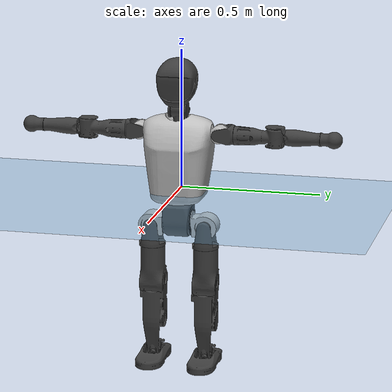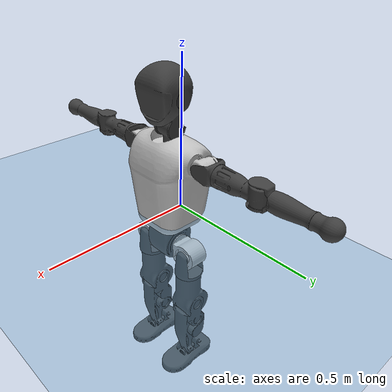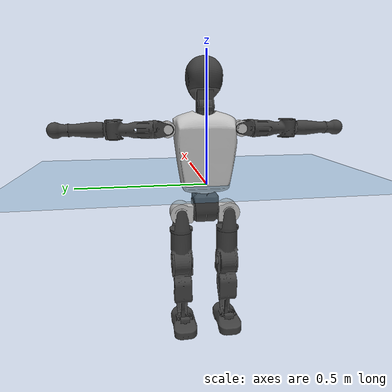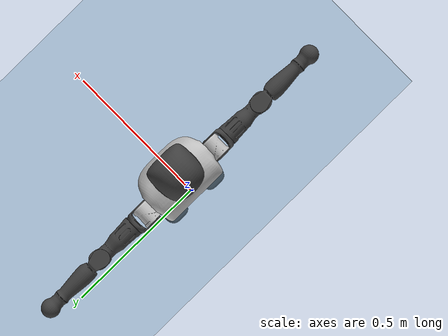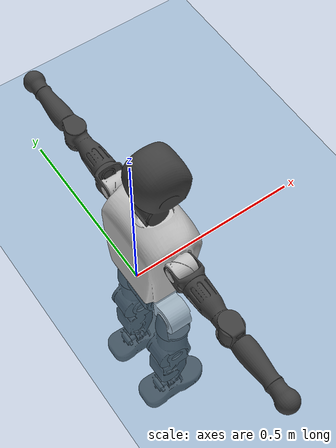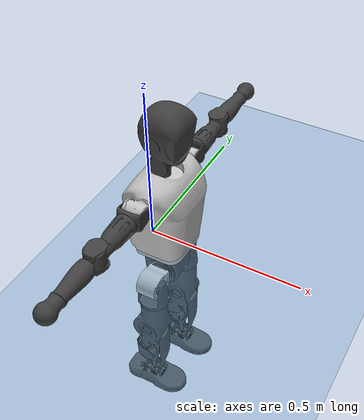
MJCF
<mujoco model="T1">
  <compiler angle="radian" assetdir="assets" balanceinertia="true" inertiafromgeom="false"/>

  <option timestep="0.005" density="1.2" viscosity="2e-05"/>

  <size nkey="1"/>

  <visual>
    <quality shadowsize="8192"/>
    <map shadowclip="0.5"/>
  </visual>

  <default>
    <default class="/">
      <joint armature="0.01" damping="0.01" frictionloss="0.1"/>
      <geom contype="0" conaffinity="0" group="1" solref="-1000 -80"/>
      <site size="0.01 0.005 0.005" group="5"/>
      <general forcelimited="true" biastype="affine" gainprm="25" biasprm="0 -25 -0.6"/>
      <default class="t1">
        <geom rgba="0.25 0.25 0.25 1"/>
        <default class="visual">
          <geom type="mesh" group="2"/>
        </default>
        <default class="collision">
          <geom group="3"/>
        </default>
        <default class="foot">
          <geom size="0.1115 0.05 0.015" type="box" condim="6" group="4" priority="1" solimp="0.015 1 0.015"/>
        </default>
        <default class="reward_collision_sphere">
          <geom group="5" rgba="1 0 0 1"/>
        </default>
      </default>
    </default>
  </default>

  <asset>
    <texture type="skybox" colorspace="auto" name="//unnamed_texture_0" builtin="gradient" rgb1="0.95 0.95 0.95" rgb2="0.95 0.95 0.95" width="100" height="600"/>
    <texture type="2d" colorspace="auto" name="texplane" builtin="checker" rgb1="0.345 0.575 0.748" rgb2="0.345 0.575 0.748" markrgb="1 1 1" width="512" height="512"/>
    <material name="MatPlane" class="/" texture="texplane" texuniform="true" texrepeat="2 2" specular="0.9"/>
    <mesh name="Trunk" class="/" file="Trunk.stl"/>
    <mesh name="H1" class="/" file="H1.stl"/>
    <mesh name="H2" class="/" file="H2.stl"/>
    <mesh name="AL1" class="/" file="AL1.stl"/>
    <mesh name="AL2" class="/" file="AL2.stl"/>
    <mesh name="AL3" class="/" file="AL3.stl"/>
    <mesh name="left_hand_link" class="/" file="left_hand_link.stl"/>
    <mesh name="AR1" class="/" file="AR1.stl"/>
    <mesh name="AR2" class="/" file="AR2.stl"/>
    <mesh name="AR3" class="/" file="AR3.stl"/>
    <mesh name="right_hand_link" class="/" file="right_hand_link.stl"/>
    <mesh name="Waist" class="/" file="Waist.stl"/>
    <mesh name="Hip_Pitch_Left" class="/" file="Hip_Pitch_Left.stl"/>
    <mesh name="Hip_Roll_Left" class="/" file="Hip_Roll_Left.stl"/>
    <mesh name="Hip_Yaw_Left" class="/" file="Hip_Yaw_Left.stl"/>
    <mesh name="Shank_Left" class="/" file="Shank_Left.stl"/>
    <mesh name="Ankle_Cross_Left" class="/" file="Ankle_Cross_Left.stl"/>
    <mesh name="left_foot_link" class="/" file="left_foot_link.stl"/>
    <mesh name="Hip_Pitch_Right" class="/" file="Hip_Pitch_Right.stl"/>
    <mesh name="Hip_Roll_Right" class="/" file="Hip_Roll_Right.stl"/>
    <mesh name="Hip_Yaw_Right" class="/" file="Hip_Yaw_Right.stl"/>
    <mesh name="Shank_Right" class="/" file="Shank_Right.stl"/>
    <mesh name="Ankle_Cross_Right" class="/" file="Ankle_Cross_Right.stl"/>
    <mesh name="right_foot_link" class="/" file="right_foot_link.stl"/>
  </asset>

  <worldbody>
    <geom name="floor" class="/" size="100 100 0.125" type="plane" group="0" material="MatPlane"/>
    <light name="toplight_shadow" class="/" pos="0 0 5" dir="0.0990148 0.0990148 -0.990148" type="directional" ambient="0.04 0.04 0.04" diffuse="0.55 0.55 0.55" specular="0.12 0.12 0.12"/>
    <light name="toplight_fill" class="/" pos="0 0 5" dir="0.0990148 0.0990148 -0.990148" type="directional" castshadow="false" ambient="0.04 0.04 0.04" diffuse="0.3 0.3 0.3" specular="0.08 0.08 0.08"/>
    <body name="trunk" childclass="t1" pos="0.000347428 0.000777354 0.00186761" quat="1 -9.9642e-05 8.14597e-05 -1.14943e-05">
      <inertial pos="0.0412143 -0.00274572 0.10118" quat="0.999945 0.000178904 -0.0104001 -0.000902209" mass="8.16683" diaginertia="0.0276232 0.0521232 0.0454444"/>
      <joint name="//unnamed_joint_0" type="free" armature="0" damping="0" frictionloss="0"/>
      <geom name="//unnamed_geom_1" class="visual" rgba="0.76 0.76 0.76 1" mesh="Trunk"/>
      <geom name="//unnamed_geom_2" class="collision" size="0.0668063 0.0890751 0.133613" pos="0.0470311 0 0.115695" type="box"/>
      <geom name="//unnamed_geom_3" class="reward_collision_sphere" size="0.102436" pos="0.0470311 0 0.0964123"/>
      <geom name="//unnamed_geom_4" class="reward_collision_sphere" size="0.0133613" pos="0.0470311 0.0785636 0"/>
      <geom name="//unnamed_geom_5" class="reward_collision_sphere" size="0.0133613" pos="0.0470311 -0.0785636 0"/>
      <geom name="//unnamed_geom_6" class="reward_collision_sphere" size="0.0133613" pos="0.0470311 0.0988977 0.173542"/>
      <geom name="//unnamed_geom_7" class="reward_collision_sphere" size="0.0133613" pos="0.0470311 -0.0988977 0.173542"/>
      <site name="imu" pos="-0.0136407 0.0135214 -0.0136774" size="0.00890751"/>
      <camera name="track" pos="0 -1.84856 0" quat="0.707107 0.707107 0 0" mode="trackcom"/>
      <camera name="ego_camera" pos="0.09563 0 0.404932" quat="-0.5 -0.5 0.5 0.5"/>
      <body name="H1" pos="0.0483152 0.000793871 0.234412" quat="0.999999 -0.00107143 -4.27611e-05 0.000926859">
        <inertial pos="-0.000977722 -0.00149589 0.0548681" quat="0.76417 -0.0100821 0.00493719 0.644917" mass="0.334838" diaginertia="7.16768e-05 0.000154378 0.000129604"/>
        <joint name="AAHead_yaw" pos="0 0 0" axis="-0.00514572 -0.00396262 0.999979" range="-1.59116 1.55861" armature="0.0102555" damping="0" frictionloss="0.0897705"/>
        <geom name="//unnamed_geom_8" class="visual" mesh="H1"/>
        <body name="H2" pos="0.002084 -0.00177792 0.0593649" quat="1 0.000200802 -0.000178571 0.000266035">
          <inertial pos="0.00478852 0.000404512 0.0948264" quat="0.988164 0.106316 -0.0729625 -0.0830998" mass="0.449908" diaginertia="0.000604491 0.00128666 0.00145145"/>
          <joint name="Head_pitch" pos="0 0 0" axis="0.0087416 -0.999942 0.00636736" stiffness="0.00443924" range="-1.20057 0.322407" armature="0.00886563" damping="0" frictionloss="0.0919795"/>
          <geom name="//unnamed_geom_9" class="visual" mesh="H2"/>
          <geom name="//unnamed_geom_10" class="collision" size="0.0712601" pos="0.00783852 0 0.106054"/>
          <geom name="//unnamed_geom_11" class="reward_collision_sphere" size="0.0801676" pos="0.015677 0 0.0964123"/>
        </body>
      </body>
      <body name="AL1" pos="0.0445786 0.099249 0.210711" quat="0.999999 -0.000781845 0.0013214 0.000383835">
        <inertial pos="-0.000180599 0.0439165 0.000146378" quat="0.508128 0.493698 -0.502518 0.495524" mass="0.375539" diaginertia="0.000412441 0.000875912 0.000244435"/>
        <joint name="Left_Shoulder_Pitch" pos="0 0 0" axis="0.00223883 0.999997 -0.000321221" range="-3.30361 1.22595" armature="0.00921982" damping="0.0108084" frictionloss="0.0817758"/>
        <geom name="//unnamed_geom_12" class="visual" rgba="0.76 0.76 0.76 1" mesh="AL1"/>
        <body name="AL2" pos="-0.000511773 0.0445978 9.80089e-05" quat="1 1.15168e-06 -2.49859e-06 3.91851e-07">
          <inertial pos="0.00231093 0.0360299 0.0024001" quat="0.488826 0.512899 -0.486839 0.510854" mass="0.119643" diaginertia="0.000121901 0.000230401 0.00015235"/>
          <joint name="Left_Shoulder_Roll" pos="0 0 0" axis="-0.999991 -0.00316676 0.00264061" stiffness="0.0036501" range="-1.51669 1.79525" armature="0.00781028" damping="0" frictionloss="0.0900369"/>
          <geom name="//unnamed_geom_13" class="visual" mesh="AL2"/>
          <body name="AL3" pos="0.00299769 0.0568566 -0.00165256" quat="1 -0.000351853 -0.000387633 0.000171291">
            <inertial pos="0.00154608 0.0788603 -0.000247852" quat="0.703926 0.710273 -0.000572992 0.000243498" mass="0.732881" diaginertia="0.00373386 0.00887776 0.000503387"/>
            <joint name="Left_Elbow_Pitch" pos="0 0 0" axis="-0.00900322 -0.999916 0.00937228" range="-2.21848 2.31882" armature="0.00777282" damping="0.00635026" frictionloss="0.0797375"/>
            <geom name="//unnamed_geom_14" class="visual" mesh="AL3"/>
            <geom name="//unnamed_geom_15" class="collision" size="0.0267225 0.0668063" pos="0 0.0462139 0" quat="0.707105 0.707108 0 0" type="cylinder"/>
            <geom name="//unnamed_geom_16" class="reward_collision_sphere" size="0.032067"/>
            <body name="left_hand_link" pos="-0.00155668 0.138572 0.0027139" quat="1 -0.000159074 1.58775e-05 0.000109265">
              <inertial pos="-0.000417738 0.100355 0.00127876" quat="0.707683 0.70653 0.000124241 -0.000669814" mass="0.230393" diaginertia="0.00248433 0.00562006 0.000178649"/>
              <joint name="Left_Elbow_Yaw" pos="0 0 0" axis="0.00202866 -0.00303691 0.999993" range="-2.45318 0.00538945" armature="0.0102435" damping="0.0130248" frictionloss="0.0831899"/>
              <geom name="//unnamed_geom_17" class="visual" mesh="left_hand_link"/>
              <geom name="//unnamed_geom_18" class="collision" size="0.0267225 0.0779407" pos="0 0.120156 0" quat="0.707105 0.707108 0 0" type="cylinder"/>
              <geom name="//unnamed_geom_19" class="reward_collision_sphere" size="0.0445375"/>
              <geom name="//unnamed_geom_20" class="reward_collision_sphere" size="0.0311763" pos="0 0.101671 0"/>
              <geom name="//unnamed_geom_21" class="reward_collision_sphere" size="0.0311763" pos="0 0.19872 0"/>
            </body>
          </body>
        </body>
      </body>
      <body name="AR1" pos="0.0421605 -0.095478 0.211671" quat="1 9.66534e-05 8.86703e-05 0.000106673">
        <inertial pos="-0.00357886 -0.0421953 0.00196806" quat="0.512797 0.486779 -0.507148 0.492835" mass="0.381106" diaginertia="0.000403328 0.000869036 0.000253747"/>
        <joint name="Right_Shoulder_Pitch" pos="0 0 0" axis="-0.002113 -0.999998 -0.00030274" stiffness="0.00586631" range="-1.22707 3.30451" armature="0.00910354" damping="0.00943565" frictionloss="0.0798721"/>
        <geom name="//unnamed_geom_22" class="visual" rgba="0.76 0.76 0.76 1" mesh="AR1"/>
        <body name="AR2" pos="0.000381032 -0.0416847 0.000217818" quat="1 -0.000257133 0.00040922 7.42602e-06">
          <inertial pos="0.00238797 -0.0358408 0.0015223" quat="0.511183 0.488039 -0.51153 0.488719" mass="0.112986" diaginertia="0.000118582 0.000240692 0.000149252"/>
          <joint name="Right_Shoulder_Roll" pos="0 0 0" axis="-0.999921 -0.0107962 0.00637835" range="-1.71804 1.62544" armature="0.00798322" damping="0.0152937" frictionloss="0.0849255"/>
          <geom name="//unnamed_geom_23" class="visual" mesh="AR2"/>
          <body name="AR3" pos="0.000244009 -0.0549583 -0.00223489" quat="1 -0.0001273 3.27436e-07 -0.000101494">
            <inertial pos="-9.19963e-05 -0.0817175 0.00257832" quat="0.702201 0.711939 -0.00751195 0.0007693" mass="0.709701" diaginertia="0.00383173 0.00837288 0.000531235"/>
            <joint name="Right_Elbow_Pitch" pos="0 0 0" axis="0.00234235 0.999995 -0.0021515" range="-2.24121 2.22547" armature="0.00907605" damping="0.0201353" frictionloss="0.0891113"/>
            <geom name="//unnamed_geom_24" class="visual" mesh="AR3"/>
            <geom name="//unnamed_geom_25" class="collision" size="0.0267225 0.0668063" pos="0 -0.0462139 0" quat="0.707105 0.707108 0 0" type="cylinder"/>
            <geom name="//unnamed_geom_26" class="reward_collision_sphere" size="0.032067"/>
            <body name="right_hand_link" pos="0.000471075 -0.135738 0.000123848" quat="1 0.000153307 0.00024545 -9.35282e-05">
              <inertial pos="-0.0004941 -0.100095 -0.00145524" quat="0.706345 0.707867 -0.000484126 0.00127979" mass="0.231346" diaginertia="0.00237358 0.00545402 0.000173716"/>
              <joint name="Right_Elbow_Yaw" pos="0 0 0" axis="0.000500345 -0.00118588 0.999999" stiffness="0.00127423" range="-0.0175409 2.44768" armature="0.0085199" damping="0.00448202" frictionloss="0.0974928"/>
              <geom name="//unnamed_geom_27" class="visual" mesh="right_hand_link"/>
              <geom name="//unnamed_geom_28" class="collision" size="0.0267225 0.0779407" pos="0 -0.120156 0" quat="0.707105 0.707108 0 0" type="cylinder"/>
              <geom name="//unnamed_geom_29" class="reward_collision_sphere" size="0.0445375"/>
              <geom name="//unnamed_geom_30" class="reward_collision_sphere" size="0.0311763" pos="0 -0.101671 0"/>
              <geom name="//unnamed_geom_31" class="reward_collision_sphere" size="0.0311763" pos="0 -0.19872 0"/>
            </body>
          </body>
        </body>
      </body>
      <body name="Waist" pos="0.0511296 -0.00133549 -0.110777" quat="1 -1.45138e-05 -7.76048e-06 -9.90187e-05">
        <inertial pos="-0.00105643 0.00121106 0.00709758" quat="0.983587 0.00218034 -0.180397 0.00305754" mass="1.85255" diaginertia="0.00154459 0.00363871 0.0040099"/>
        <joint name="Waist" pos="0 0 0" axis="0.00318563 0.0114355 0.99993" stiffness="0.00442194" range="-1.58233 1.58071" armature="0.00861655" damping="0.026128" frictionloss="0.0877687"/>
        <geom name="//unnamed_geom_32" class="visual" mesh="Waist"/>
        <body name="Hip_Pitch_Left" pos="-0.00176417 0.0996213 0.00168333" quat="0.999999 8.83453e-05 -0.000955635 0.00111058">
          <inertial pos="-0.00162474 -0.00432818 -0.0180643" quat="0.975423 0.219776 0.0157526 -5.68099e-05" mass="0.702475" diaginertia="0.000515424 0.000962883 0.00104313"/>
          <joint name="Left_Hip_Pitch" pos="0 0 0" axis="-9.18202e-05 1 -3.30799e-06" range="-1.78074 1.5823" armature="0.00775841" damping="0.0118437" frictionloss="0.101074"/>
          <geom name="//unnamed_geom_33" class="visual" rgba="0.76 0.76 0.76 1" mesh="Hip_Pitch_Left"/>
          <body name="Hip_Roll_Left" pos="0.00337495 -0.000903858 -0.0221703" quat="1 0.000631735 0.000214033 0.000565653">
            <inertial pos="0.00272275 -0.000577045 -0.054451" quat="0.707195 -0.00443602 -0.00707676 0.706969" mass="0.263423" diaginertia="0.000516884 0.00101198 0.000421884"/>
            <joint name="Left_Hip_Roll" pos="0 0 0" axis="-0.999996 -0.000951296 0.00282731" range="-1.56582 0.213218" armature="0.00972047" damping="0.021262" frictionloss="0.0887672"/>
            <geom name="//unnamed_geom_34" class="visual" mesh="Hip_Roll_Left"/>
            <geom name="//unnamed_geom_35" class="reward_collision_sphere" size="0.0489913"/>
            <body name="Hip_Yaw_Left" pos="0.000167821 0.000508059 -0.0782369" quat="1 -3.15364e-06 -4.29045e-06 -6.96833e-06">
              <inertial pos="-0.00471876 0.00199899 -0.0833651" quat="0.6978 -0.0377464 -0.0315648 0.714601" mass="1.55526" diaginertia="0.00775569 0.0173819 0.00217457"/>
              <joint name="Left_Hip_Yaw" pos="0 0 0" axis="0.000526319 0.00555273 -0.999984" range="-1.00896 0.996021" armature="0.00887194" damping="0.0060755" frictionloss="0.0971649"/>
              <geom name="//unnamed_geom_36" class="visual" mesh="Hip_Yaw_Left"/>
              <geom name="//unnamed_geom_37" class="collision" size="0.0445375 0.0712601" type="cylinder"/>
              <body name="Shank_Left" pos="-0.00873378 -0.00167121 -0.131149" quat="0.999999 -0.000471412 -0.000496681 0.00101855">
                <inertial pos="-0.00468362 -0.000908402 -0.119895" quat="0.997849 0.0133567 -0.0187149 0.0613935" mass="1.25531" diaginertia="0.0104337 0.0239285 0.00156838"/>
                <joint name="Left_Knee_Pitch" pos="0 0 0" axis="-0.00629747 0.999962 -0.00602437" range="-0.0117796 2.28769" armature="0.00999398" damping="0.000939723" frictionloss="0.0891664"/>
                <geom name="//unnamed_geom_38" class="visual" mesh="Shank_Left"/>
                <geom name="//unnamed_geom_39" class="collision" size="0.0445375 0.0668063" pos="0 0 -0.115695" type="cylinder"/>
                <geom name="//unnamed_geom_40" class="reward_collision_sphere" size="0.0578988"/>
                <body name="Ankle_Cross_Left" pos="0.000995029 -0.00262028 -0.269058" quat="1 -4.36329e-05 0.000295009 -0.000125344">
                  <inertial pos="-0.00223488 0.000388157 -0.00833955" quat="0.447778 0.554826 0.541487 0.445484" mass="0.0500069" diaginertia="8.73171e-06 1.71233e-05 9.31323e-06"/>
                  <joint name="Left_Ankle_Pitch" pos="0 0 0" axis="2.10402e-05 1 -5.19296e-05" stiffness="0.0073143" range="-0.923051 0.40401" armature="0.00960021" damping="0" frictionloss="0.0956086"/>
                  <geom name="//unnamed_geom_41" class="visual" mesh="Ankle_Cross_Left"/>
                  <body name="left_foot_link" pos="-0.00202849 -0.000715109 -0.0144548" quat="0.999999 0.00102212 -0.000916046 0.000189719">
                    <inertial pos="0.000768105 -0.00101828 -0.00894022" quat="-0.00509886 0.614073 -0.00698288 0.789202" mass="0.497694" diaginertia="0.000818036 0.00166819 0.0019367"/>
                    <joint name="Left_Ankle_Roll" pos="0 0 0" axis="-0.999951 -0.00514588 0.00842391" stiffness="0.0081486" range="-0.432886 0.493797" armature="0.00909437" damping="0.0106854" frictionloss="0.099782"/>
                    <geom name="//unnamed_geom_42" class="visual" mesh="left_foot_link"/>
                    <geom name="left_foot" class="foot" size="0.103735 0.0409301 0.0145683" pos="0.00783852 0 -0.0144618"/>
                    <geom name="//unnamed_geom_44" class="reward_collision_sphere" size="0.046319" pos="0.00783852 0 -0.0144618"/>
                    <geom name="//unnamed_geom_45" class="reward_collision_sphere" size="0.0267225" pos="0.074466 -0.0212584 -0.0144618"/>
                    <geom name="//unnamed_geom_46" class="reward_collision_sphere" size="0.0267225" pos="-0.0548697 -0.0212584 -0.0144618"/>
                    <site name="left_foot" class="foot" pos="0.00783852 0 -0.0144618" size="0.00890751"/>
                  </body>
                </body>
              </body>
            </body>
          </body>
        </body>
        <body name="Hip_Pitch_Right" pos="-0.000602259 -0.0976799 0.000210941" quat="1 -0.000128654 0.000256951 2.1641e-05">
          <inertial pos="0.000529639 0.00733624 -0.0178276" quat="0.976227 -0.216369 0.0106303 -0.00719369" mass="0.697808" diaginertia="0.000517882 0.00096589 0.00101158"/>
          <joint name="Right_Hip_Pitch" pos="0 0 0" axis="-0.000249184 -1 -0.000707177" range="-1.56602 1.7729" armature="0.00891044" damping="0.00897689" frictionloss="0.08949"/>
          <geom name="//unnamed_geom_47" class="visual" rgba="0.76 0.76 0.76 1" mesh="Hip_Pitch_Right"/>
          <body name="Hip_Roll_Right" pos="0.00182253 0.000628606 -0.0217546" quat="1 -9.19045e-05 0.000141488 -2.16116e-05">
            <inertial pos="0.00144336 0.00109058 -0.0518878" quat="0.710465 0.00126819 -0.0132787 0.703607" mass="0.260408" diaginertia="0.0005122 0.00101424 0.000409105"/>
            <joint name="Right_Hip_Roll" pos="0 0 0" axis="-0.999997 0.00167671 0.00159954" stiffness="0.00384142" range="-0.178681 1.58035" armature="0.00828635" damping="0.00839722" frictionloss="0.0885897"/>
            <geom name="//unnamed_geom_48" class="visual" mesh="Hip_Roll_Right"/>
            <geom name="//unnamed_geom_49" class="reward_collision_sphere" size="0.0489913"/>
            <body name="Hip_Yaw_Right" pos="-0.00246068 0.00194909 -0.0789641" quat="1 0.000326073 -0.000250205 0.000179443">
              <inertial pos="-0.0077471 -0.000928124 -0.0887073" quat="0.710359 -0.0387661 -0.0424127 0.70149" mass="1.56269" diaginertia="0.00757166 0.0167345 0.00211572"/>
              <joint name="Right_Hip_Yaw" pos="0 0 0" axis="0.00220751 -0.000242987 -0.999998" range="-0.951188 0.974275" armature="0.00879808" damping="0.00729557" frictionloss="0.0881206"/>
              <geom name="//unnamed_geom_50" class="visual" mesh="Hip_Yaw_Right"/>
              <geom name="//unnamed_geom_51" class="collision" size="0.0445375 0.0712601" type="cylinder"/>
              <body name="Shank_Right" pos="-0.0105515 0.00158559 -0.127003" quat="1 9.40527e-05 -9.57054e-05 0.000151878">
                <inertial pos="-0.00214471 -0.00126908 -0.118684" quat="0.999011 -0.0128265 -0.0258328 -0.0338464" mass="1.19278" diaginertia="0.0100885 0.0235825 0.0015837"/>
                <joint name="Right_Knee_Pitch" pos="0 0 0" axis="-0.00132514 -0.999998 -0.00165977" range="-2.35178 -0.0200056" armature="0.00960369" damping="0" frictionloss="0.0998226"/>
                <geom name="//unnamed_geom_52" class="visual" mesh="Shank_Right"/>
                <geom name="//unnamed_geom_53" class="collision" size="0.0445375 0.0668063" pos="0 0 -0.115695" type="cylinder"/>
                <geom name="//unnamed_geom_54" class="reward_collision_sphere" size="0.0578988"/>
                <body name="Ankle_Cross_Right" pos="-0.000333202 -0.00338711 -0.269474" quat="0.999999 -0.000711676 -0.00106219 0.000570996">
                  <inertial pos="-0.00178126 -0.000317957 -0.00685104" quat="0.443212 0.548985 0.552867 0.443303" mass="0.0517414" diaginertia="8.25802e-06 1.73135e-05 9.44943e-06"/>
                  <joint name="Right_Ankle_Pitch" pos="0 0 0" axis="-0.000330369 -0.999992 0.00397567" range="-0.365944 0.922943" armature="0.00888675" damping="0.0194504" frictionloss="0.0897858"/>
                  <geom name="//unnamed_geom_55" class="visual" mesh="Ankle_Cross_Right"/>
                  <body name="right_foot_link" pos="6.70268e-05 -0.00097504 -0.0128596" quat="0.999999 0.000612118 -0.000593483 -0.000895517">
                    <inertial pos="-0.00243513 0.00068076 -0.0089448" quat="0.000477559 0.618657 0.00157615 0.78566" mass="0.483847" diaginertia="0.000769859 0.00156727 0.00182618"/>
                    <joint name="Right_Ankle_Roll" pos="0 0 0" axis="-0.999999 -0.00151694 0.000149984" stiffness="0.00102959" range="-0.412655 0.423189" armature="0.00867421" damping="0.0032647" frictionloss="0.0844592"/>
                    <geom name="//unnamed_geom_56" class="visual" mesh="right_foot_link"/>
                    <geom name="right_foot" class="foot" size="0.102373 0.0428644 0.0138128" pos="0.00783852 0 -0.0144618"/>
                    <geom name="//unnamed_geom_58" class="reward_collision_sphere" size="0.03563"/>
                    <geom name="//unnamed_geom_59" class="reward_collision_sphere" size="0.0267225" pos="0.00783852 0 -0.0144618"/>
                    <geom name="//unnamed_geom_60" class="reward_collision_sphere" size="0.0267225" pos="0.074466 0.0212584 -0.0144618"/>
                    <geom name="//unnamed_geom_61" class="reward_collision_sphere" size="0.0267225" pos="-0.0548697 0.0212584 -0.0144618"/>
                    <site name="right_foot" class="foot" pos="0.00783852 0 -0.0144618" size="0.00890751"/>
                  </body>
                </body>
              </body>
            </body>
          </body>
        </body>
      </body>
    </body>
  </worldbody>

  <contact>
    <pair class="/" geom1="floor" geom2="left_foot" name="//unnamed_contact_0"/>
    <pair class="/" geom1="floor" geom2="right_foot" name="//unnamed_contact_1"/>
  </contact>

  <actuator>
    <general name="AAHead_yaw" class="/" joint="AAHead_yaw" forcerange="-6.39096 6.39096" gainprm="20.7046" biasprm="0 -20.7046 -0.511622"/>
    <general name="Head_pitch" class="/" joint="Head_pitch" forcerange="-6.00024 6.00024" gainprm="20.7046" biasprm="0 -20.7046 -0.511622"/>
    <general name="Left_Shoulder_Pitch" class="/" joint="Left_Shoulder_Pitch" forcerange="-15.6339 15.6339" gainprm="20.7046" biasprm="0 -20.7046 -0.511622"/>
    <general name="Left_Shoulder_Roll" class="/" joint="Left_Shoulder_Roll" forcerange="-15.2977 15.2977" gainprm="20.7046" biasprm="0 -20.7046 -0.511622"/>
    <general name="Left_Elbow_Pitch" class="/" joint="Left_Elbow_Pitch" forcerange="-14.4562 14.4562" gainprm="20.7046" biasprm="0 -20.7046 -0.511622"/>
    <general name="Left_Elbow_Yaw" class="/" joint="Left_Elbow_Yaw" forcerange="-17.7394 17.7394" gainprm="20.7046" biasprm="0 -20.7046 -0.511622"/>
    <general name="Right_Shoulder_Pitch" class="/" joint="Right_Shoulder_Pitch" forcerange="-17.7533 17.7533" gainprm="20.7046" biasprm="0 -20.7046 -0.511622"/>
    <general name="Right_Shoulder_Roll" class="/" joint="Right_Shoulder_Roll" forcerange="-15.9863 15.9863" gainprm="20.7046" biasprm="0 -20.7046 -0.511622"/>
    <general name="Right_Elbow_Pitch" class="/" joint="Right_Elbow_Pitch" forcerange="-16.1231 16.1231" gainprm="20.7046" biasprm="0 -20.7046 -0.511622"/>
    <general name="Right_Elbow_Yaw" class="/" joint="Right_Elbow_Yaw" forcerange="-15.7483 15.7483" gainprm="20.7046" biasprm="0 -20.7046 -0.511622"/>
    <general name="Waist" class="/" joint="Waist" forcerange="-26.4174 26.4174" gainprm="20.7046" biasprm="0 -20.7046 -0.511622"/>
    <general name="Left_Hip_Pitch" class="/" joint="Left_Hip_Pitch" forcerange="-39.9916 39.9916" gainprm="20.7046" biasprm="0 -20.7046 -0.511622"/>
    <general name="Left_Hip_Roll" class="/" joint="Left_Hip_Roll" forcerange="-29.4589 29.4589" gainprm="20.7046" biasprm="0 -20.7046 -0.511622"/>
    <general name="Left_Hip_Yaw" class="/" joint="Left_Hip_Yaw" forcerange="-24.0618 24.0618" gainprm="20.7046" biasprm="0 -20.7046 -0.511622"/>
    <general name="Left_Knee_Pitch" class="/" joint="Left_Knee_Pitch" forcerange="-47.8679 47.8679" gainprm="20.7046" biasprm="0 -20.7046 -0.511622"/>
    <general name="Left_Ankle_Pitch" class="/" joint="Left_Ankle_Pitch" forcerange="-17.9501 17.9501" gainprm="20.7046" biasprm="0 -20.7046 -0.511622"/>
    <general name="Left_Ankle_Roll" class="/" joint="Left_Ankle_Roll" forcerange="-13.2991 13.2991" gainprm="20.7046" biasprm="0 -20.7046 -0.511622"/>
    <general name="Right_Hip_Pitch" class="/" joint="Right_Hip_Pitch" forcerange="-39.2064 39.2064" gainprm="20.7046" biasprm="0 -20.7046 -0.511622"/>
    <general name="Right_Hip_Roll" class="/" joint="Right_Hip_Roll" forcerange="-26.6052 26.6052" gainprm="20.7046" biasprm="0 -20.7046 -0.511622"/>
    <general name="Right_Hip_Yaw" class="/" joint="Right_Hip_Yaw" forcerange="-27.7498 27.7498" gainprm="20.7046" biasprm="0 -20.7046 -0.511622"/>
    <general name="Right_Knee_Pitch" class="/" joint="Right_Knee_Pitch" forcerange="-53.5971 53.5971" gainprm="20.7046" biasprm="0 -20.7046 -0.511622"/>
    <general name="Right_Ankle_Pitch" class="/" joint="Right_Ankle_Pitch" forcerange="-16.0576 16.0576" gainprm="20.7046" biasprm="0 -20.7046 -0.511622"/>
    <general name="Right_Ankle_Roll" class="/" joint="Right_Ankle_Roll" forcerange="-13.4166 13.4166" gainprm="20.7046" biasprm="0 -20.7046 -0.511622"/>
  </actuator>

  <sensor>
    <gyro site="imu" name="imu_angular_velocity"/>
    <velocimeter site="imu" name="imu_linear_velocity"/>
    <framelinvel objtype="site" objname="left_foot" name="left_foot_global_linear_velocity"/>
    <framelinvel objtype="site" objname="right_foot" name="right_foot_global_linear_velocity"/>
  </sensor>

  <keyframe>
    <key name="home" qpos="0 0 0.6385 1 0 0 0 0 0 0 1.4 0 -0.4 0 -1.4 0 0.4 0 -0.4 0 0 0.8 -0.4 0 0.4 0 0 -0.8 0.4 0"/>
  </keyframe>
</mujoco>
